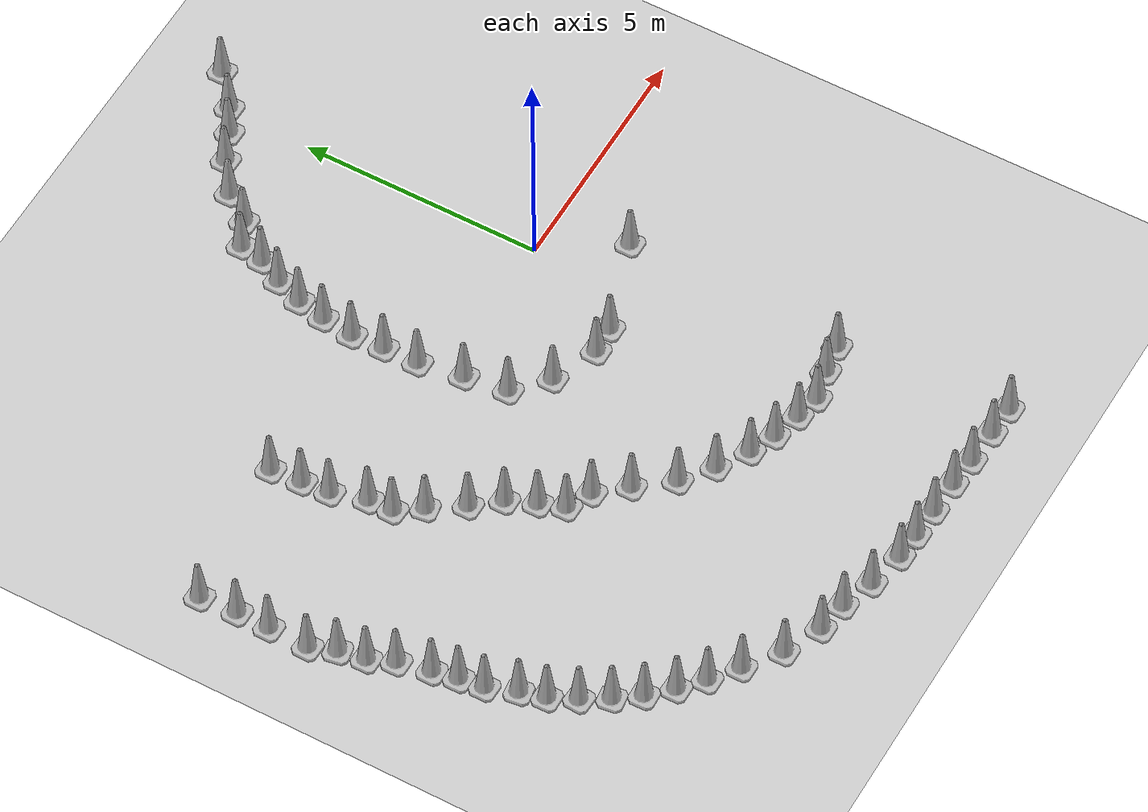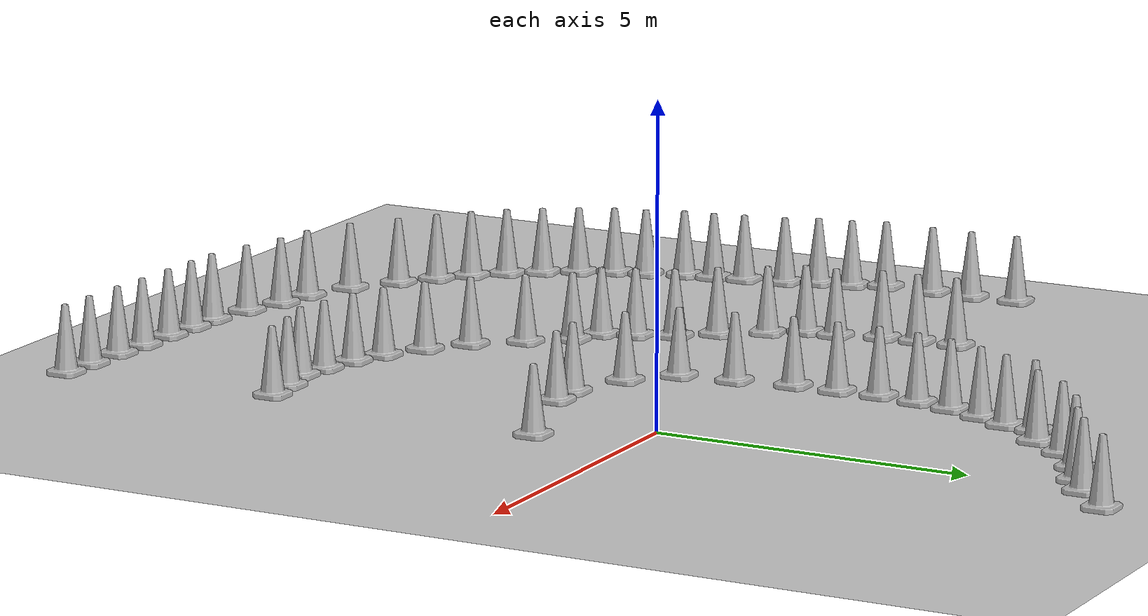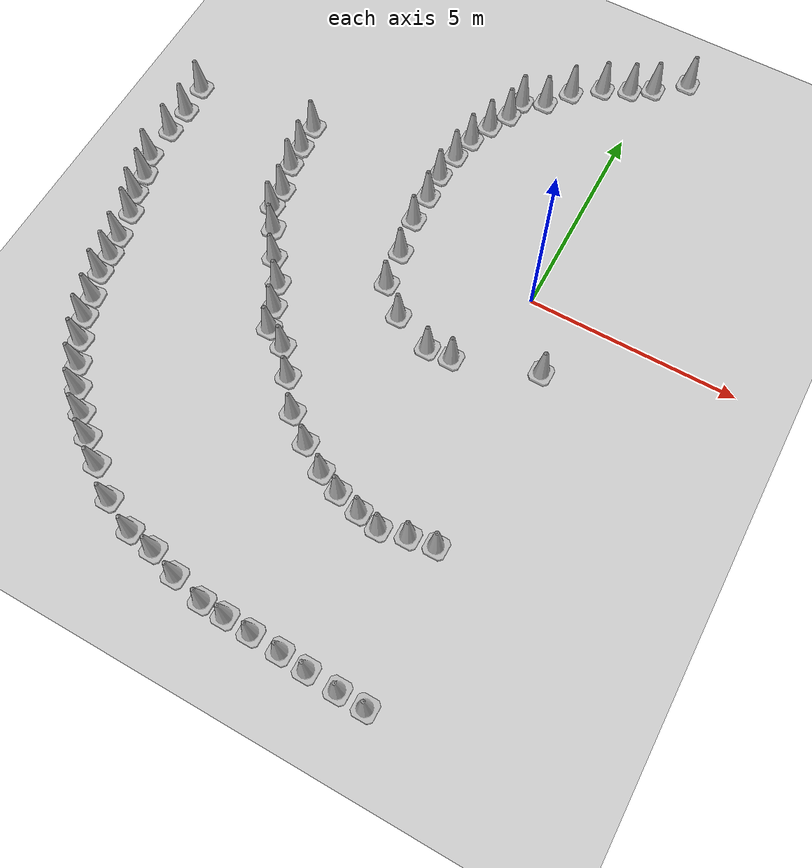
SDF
<sdf version="1.7">
 <world name="default">
  <model name="ground_plane">
   <static>1</static>
   <link name="link">
    <collision name="collision">
     <geometry><plane><normal>0 0 1</normal><size>100 100</size></plane></geometry>
     <surface>
      <contact><collide_bitmask>65535</collide_bitmask></contact>
      <friction><ode><mu>100</mu><mu2>50</mu2></ode></friction>
     </surface>
    </collision>
    <visual name="visual">
     <cast_shadows>0</cast_shadows>
     <geometry><plane><normal>0 0 1</normal><size>100 100</size></plane></geometry>
     <material>
      <script><uri>file://media/materials/scripts/gazebo.material</uri><name>Gazebo/Grey</name></script>
     </material>
    </visual>
   </link>
  </model>
  <model name="Construction Cone">
   <link name="link">
    <collision name="collision">
     <geometry>
      <mesh><scale>10 10 10</scale><uri>model://construction_cone/meshes/construction_cone.dae</uri></mesh>
     </geometry>
    </collision>
    <visual name="visual">
     <geometry>
      <mesh><scale>10 10 10</scale><uri>model://construction_cone/meshes/construction_cone.dae</uri></mesh>
     </geometry>
    </visual>
    <inertial>
     <inertia><ixx>1</ixx><ixy>0</ixy><ixz>0</ixz><iyy>1</iyy><iyz>0</iyz><izz>1</izz></inertia>
     <mass>1</mass>
    </inertial>
   </link>
   <pose>-3.44068 1.98693 -0 0 -0 0</pose>
  </model>
  <model name="Construction Cone_0">
   <link name="link">
    <collision name="collision">
     <geometry>
      <mesh><scale>10 10 10</scale><uri>model://construction_cone/meshes/construction_cone.dae</uri></mesh>
     </geometry>
    </collision>
    <visual name="visual">
     <geometry>
      <mesh><scale>10 10 10</scale><uri>model://construction_cone/meshes/construction_cone.dae</uri></mesh>
     </geometry>
    </visual>
    <inertial>
     <inertia><ixx>1</ixx><ixy>0</ixy><ixz>0</ixz><iyy>1</iyy><iyz>0</iyz><izz>1</izz></inertia>
     <mass>1</mass>
    </inertial>
   </link>
   <pose>-3.40166 1.31353 -0 0 -0 0</pose>
  </model>
  <model name="Construction Cone_1">
   <link name="link">
    <collision name="collision">
     <geometry>
      <mesh><scale>10 10 10</scale><uri>model://construction_cone/meshes/construction_cone.dae</uri></mesh>
     </geometry>
    </collision>
    <visual name="visual">
     <geometry>
      <mesh><scale>10 10 10</scale><uri>model://construction_cone/meshes/construction_cone.dae</uri></mesh>
     </geometry>
    </visual>
    <inertial>
     <inertia><ixx>1</ixx><ixy>0</ixy><ixz>0</ixz><iyy>1</iyy><iyz>0</iyz><izz>1</izz></inertia>
     <mass>1</mass>
    </inertial>
   </link>
   <pose>-3.38609 0.586652 -0 0 -1e-06 0</pose>
  </model>
  <model name="Construction Cone_2">
   <link name="link">
    <collision name="collision">
     <geometry>
      <mesh><scale>10 10 10</scale><uri>model://construction_cone/meshes/construction_cone.dae</uri></mesh>
     </geometry>
    </collision>
    <visual name="visual">
     <geometry>
      <mesh><scale>10 10 10</scale><uri>model://construction_cone/meshes/construction_cone.dae</uri></mesh>
     </geometry>
    </visual>
    <inertial>
     <inertia><ixx>1</ixx><ixy>0</ixy><ixz>0</ixz><iyy>1</iyy><iyz>0</iyz><izz>1</izz></inertia>
     <mass>1</mass>
    </inertial>
   </link>
   <pose>-3.23094 -0.328512 -0 0 -0 0</pose>
  </model>
  <model name="Construction Cone_3">
   <link name="link">
    <collision name="collision">
     <geometry>
      <mesh><scale>10 10 10</scale><uri>model://construction_cone/meshes/construction_cone.dae</uri></mesh>
     </geometry>
    </collision>
    <visual name="visual">
     <geometry>
      <mesh><scale>10 10 10</scale><uri>model://construction_cone/meshes/construction_cone.dae</uri></mesh>
     </geometry>
    </visual>
    <inertial>
     <inertia><ixx>1</ixx><ixy>0</ixy><ixz>0</ixz><iyy>1</iyy><iyz>0</iyz><izz>1</izz></inertia>
     <mass>1</mass>
    </inertial>
   </link>
   <pose>-3.10854 -1.21448 -0 0 -1e-06 0</pose>
  </model>
  <model name="Construction Cone_4">
   <link name="link">
    <collision name="collision">
     <geometry>
      <mesh><scale>10 10 10</scale><uri>model://construction_cone/meshes/construction_cone.dae</uri></mesh>
     </geometry>
    </collision>
    <visual name="visual">
     <geometry>
      <mesh><scale>10 10 10</scale><uri>model://construction_cone/meshes/construction_cone.dae</uri></mesh>
     </geometry>
    </visual>
    <inertial>
     <inertia><ixx>1</ixx><ixy>0</ixy><ixz>0</ixz><iyy>1</iyy><iyz>0</iyz><izz>1</izz></inertia>
     <mass>1</mass>
    </inertial>
   </link>
   <pose>-2.46633 -1.80717 -0 0 -1e-06 0</pose>
  </model>
  <model name="Construction Cone_5">
   <link name="link">
    <collision name="collision">
     <geometry>
      <mesh><scale>10 10 10</scale><uri>model://construction_cone/meshes/construction_cone.dae</uri></mesh>
     </geometry>
    </collision>
    <visual name="visual">
     <geometry>
      <mesh><scale>10 10 10</scale><uri>model://construction_cone/meshes/construction_cone.dae</uri></mesh>
     </geometry>
    </visual>
    <inertial>
     <inertia><ixx>1</ixx><ixy>0</ixy><ixz>0</ixz><iyy>1</iyy><iyz>0</iyz><izz>1</izz></inertia>
     <mass>1</mass>
    </inertial>
   </link>
   <pose>-1.51013 -2.19989 -0 0 -0 0</pose>
  </model>
  <model name="Construction Cone_6">
   <link name="link">
    <collision name="collision">
     <geometry>
      <mesh><scale>10 10 10</scale><uri>model://construction_cone/meshes/construction_cone.dae</uri></mesh>
     </geometry>
    </collision>
    <visual name="visual">
     <geometry>
      <mesh><scale>10 10 10</scale><uri>model://construction_cone/meshes/construction_cone.dae</uri></mesh>
     </geometry>
    </visual>
    <inertial>
     <inertia><ixx>1</ixx><ixy>0</ixy><ixz>0</ixz><iyy>1</iyy><iyz>0</iyz><izz>1</izz></inertia>
     <mass>1</mass>
    </inertial>
   </link>
   <pose>-0.921866 -2.16276 -0 0 -0 0</pose>
  </model>
  <model name="Construction Cone_7">
   <link name="link">
    <collision name="collision">
     <geometry>
      <mesh><scale>10 10 10</scale><uri>model://construction_cone/meshes/construction_cone.dae</uri></mesh>
     </geometry>
    </collision>
    <visual name="visual">
     <geometry>
      <mesh><scale>10 10 10</scale><uri>model://construction_cone/meshes/construction_cone.dae</uri></mesh>
     </geometry>
    </visual>
    <inertial>
     <inertia><ixx>1</ixx><ixy>0</ixy><ixz>0</ixz><iyy>1</iyy><iyz>0</iyz><izz>1</izz></inertia>
     <mass>1</mass>
    </inertial>
   </link>
   <pose>0.9944 -1.52269 -0 0 -1e-06 0</pose>
  </model>
  <model name="Construction Cone_22">
   <link name="link">
    <collision name="collision">
     <geometry>
      <mesh><scale>10 10 10</scale><uri>model://construction_cone/meshes/construction_cone.dae</uri></mesh>
     </geometry>
    </collision>
    <visual name="visual">
     <geometry>
      <mesh><scale>10 10 10</scale><uri>model://construction_cone/meshes/construction_cone.dae</uri></mesh>
     </geometry>
    </visual>
    <inertial>
     <inertia><ixx>1</ixx><ixy>0</ixy><ixz>0</ixz><iyy>1</iyy><iyz>0</iyz><izz>1</izz></inertia>
     <mass>1</mass>
    </inertial>
   </link>
   <pose>0.05073 6.79197 -0 0 -0 0.001801</pose>
  </model>
  <model name="Construction Cone_24">
   <link name="link">
    <collision name="collision">
     <geometry>
      <mesh><scale>10 10 10</scale><uri>model://construction_cone/meshes/construction_cone.dae</uri></mesh>
     </geometry>
    </collision>
    <visual name="visual">
     <geometry>
      <mesh><scale>10 10 10</scale><uri>model://construction_cone/meshes/construction_cone.dae</uri></mesh>
     </geometry>
    </visual>
    <inertial>
     <inertia><ixx>1</ixx><ixy>0</ixy><ixz>0</ixz><iyy>1</iyy><iyz>0</iyz><izz>1</izz></inertia>
     <mass>1</mass>
    </inertial>
   </link>
   <pose>0.746636 7.3753 -0 0 -0 0</pose>
  </model>
  <model name="Construction Cone_49">
   <link name="link">
    <collision name="collision">
     <geometry>
      <mesh><scale>10 10 10</scale><uri>model://construction_cone/meshes/construction_cone.dae</uri></mesh>
     </geometry>
    </collision>
    <visual name="visual">
     <geometry>
      <mesh><scale>10 10 10</scale><uri>model://construction_cone/meshes/construction_cone.dae</uri></mesh>
     </geometry>
    </visual>
    <inertial>
     <inertia><ixx>1</ixx><ixy>0</ixy><ixz>0</ixz><iyy>1</iyy><iyz>0</iyz><izz>1</izz></inertia>
     <mass>1</mass>
    </inertial>
   </link>
   <pose>-0.452202 6.48631 -0 0 0 -0.000383</pose>
  </model>
  <model name="Construction Cone_50">
   <link name="link">
    <collision name="collision">
     <geometry>
      <mesh><scale>10 10 10</scale><uri>model://construction_cone/meshes/construction_cone.dae</uri></mesh>
     </geometry>
    </collision>
    <visual name="visual">
     <geometry>
      <mesh><scale>10 10 10</scale><uri>model://construction_cone/meshes/construction_cone.dae</uri></mesh>
     </geometry>
    </visual>
    <inertial>
     <inertia><ixx>1</ixx><ixy>0</ixy><ixz>0</ixz><iyy>1</iyy><iyz>0</iyz><izz>1</izz></inertia>
     <mass>1</mass>
    </inertial>
   </link>
   <pose>-1.0673 6.19671 -0 0 -1e-06 0</pose>
  </model>
  <model name="Construction Cone_51">
   <link name="link">
    <collision name="collision">
     <geometry>
      <mesh><scale>10 10 10</scale><uri>model://construction_cone/meshes/construction_cone.dae</uri></mesh>
     </geometry>
    </collision>
    <visual name="visual">
     <geometry>
      <mesh><scale>10 10 10</scale><uri>model://construction_cone/meshes/construction_cone.dae</uri></mesh>
     </geometry>
    </visual>
    <inertial>
     <inertia><ixx>1</ixx><ixy>0</ixy><ixz>0</ixz><iyy>1</iyy><iyz>0</iyz><izz>1</izz></inertia>
     <mass>1</mass>
    </inertial>
   </link>
   <pose>-1.71318 5.71714 0 -0 -0 -0</pose>
  </model>
  <model name="Construction Cone_52">
   <link name="link">
    <collision name="collision">
     <geometry>
      <mesh><scale>10 10 10</scale><uri>model://construction_cone/meshes/construction_cone.dae</uri></mesh>
     </geometry>
    </collision>
    <visual name="visual">
     <geometry>
      <mesh><scale>10 10 10</scale><uri>model://construction_cone/meshes/construction_cone.dae</uri></mesh>
     </geometry>
    </visual>
    <inertial>
     <inertia><ixx>1</ixx><ixy>0</ixy><ixz>0</ixz><iyy>1</iyy><iyz>0</iyz><izz>1</izz></inertia>
     <mass>1</mass>
    </inertial>
   </link>
   <pose>-2.14539 5.13354 -0 0 -1e-06 0</pose>
  </model>
  <model name="Construction Cone_53">
   <link name="link">
    <collision name="collision">
     <geometry>
      <mesh><scale>10 10 10</scale><uri>model://construction_cone/meshes/construction_cone.dae</uri></mesh>
     </geometry>
    </collision>
    <visual name="visual">
     <geometry>
      <mesh><scale>10 10 10</scale><uri>model://construction_cone/meshes/construction_cone.dae</uri></mesh>
     </geometry>
    </visual>
    <inertial>
     <inertia><ixx>1</ixx><ixy>0</ixy><ixz>0</ixz><iyy>1</iyy><iyz>0</iyz><izz>1</izz></inertia>
     <mass>1</mass>
    </inertial>
   </link>
   <pose>-3.36483 2.65519 -0 0 -0 0</pose>
  </model>
  <model name="Construction Cone_54">
   <link name="link">
    <collision name="collision">
     <geometry>
      <mesh><scale>10 10 10</scale><uri>model://construction_cone/meshes/construction_cone.dae</uri></mesh>
     </geometry>
    </collision>
    <visual name="visual">
     <geometry>
      <mesh><scale>10 10 10</scale><uri>model://construction_cone/meshes/construction_cone.dae</uri></mesh>
     </geometry>
    </visual>
    <inertial>
     <inertia><ixx>1</ixx><ixy>0</ixy><ixz>0</ixz><iyy>1</iyy><iyz>0</iyz><izz>1</izz></inertia>
     <mass>1</mass>
    </inertial>
   </link>
   <pose>-3.2459 3.25522 -0 0 -0 0</pose>
  </model>
  <model name="Construction Cone_55">
   <link name="link">
    <collision name="collision">
     <geometry>
      <mesh><scale>10 10 10</scale><uri>model://construction_cone/meshes/construction_cone.dae</uri></mesh>
     </geometry>
    </collision>
    <visual name="visual">
     <geometry>
      <mesh><scale>10 10 10</scale><uri>model://construction_cone/meshes/construction_cone.dae</uri></mesh>
     </geometry>
    </visual>
    <inertial>
     <inertia><ixx>1</ixx><ixy>0</ixy><ixz>0</ixz><iyy>1</iyy><iyz>0</iyz><izz>1</izz></inertia>
     <mass>1</mass>
    </inertial>
   </link>
   <pose>-3.03473 3.83269 -0 0 -0 0</pose>
  </model>
  <model name="Construction Cone_56">
   <link name="link">
    <collision name="collision">
     <geometry>
      <mesh><scale>10 10 10</scale><uri>model://construction_cone/meshes/construction_cone.dae</uri></mesh>
     </geometry>
    </collision>
    <visual name="visual">
     <geometry>
      <mesh><scale>10 10 10</scale><uri>model://construction_cone/meshes/construction_cone.dae</uri></mesh>
     </geometry>
    </visual>
    <inertial>
     <inertia><ixx>1</ixx><ixy>0</ixy><ixz>0</ixz><iyy>1</iyy><iyz>0</iyz><izz>1</izz></inertia>
     <mass>1</mass>
    </inertial>
   </link>
   <pose>-2.76935 4.35747 -0 0 -1e-06 0</pose>
  </model>
  <model name="Construction Cone_57">
   <link name="link">
    <collision name="collision">
     <geometry>
      <mesh><scale>10 10 10</scale><uri>model://construction_cone/meshes/construction_cone.dae</uri></mesh>
     </geometry>
    </collision>
    <visual name="visual">
     <geometry>
      <mesh><scale>10 10 10</scale><uri>model://construction_cone/meshes/construction_cone.dae</uri></mesh>
     </geometry>
    </visual>
    <inertial>
     <inertia><ixx>1</ixx><ixy>0</ixy><ixz>0</ixz><iyy>1</iyy><iyz>0</iyz><izz>1</izz></inertia>
     <mass>1</mass>
    </inertial>
   </link>
   <pose>-2.66975 4.8703 -0 0 -0 0</pose>
  </model>
  <model name="Construction Cone_72">
   <link name="link">
    <collision name="collision">
     <geometry>
      <mesh><scale>10 10 10</scale><uri>model://construction_cone/meshes/construction_cone.dae</uri></mesh>
     </geometry>
    </collision>
    <visual name="visual">
     <geometry>
      <mesh><scale>10 10 10</scale><uri>model://construction_cone/meshes/construction_cone.dae</uri></mesh>
     </geometry>
    </visual>
    <inertial>
     <inertia><ixx>1</ixx><ixy>0</ixy><ixz>0</ixz><iyy>1</iyy><iyz>0</iyz><izz>1</izz></inertia>
     <mass>1</mass>
    </inertial>
   </link>
   <pose>0.808801 -6.08087 -0 0 -0 0</pose>
  </model>
  <model name="Construction Cone_73">
   <link name="link">
    <collision name="collision">
     <geometry>
      <mesh><scale>10 10 10</scale><uri>model://construction_cone/meshes/construction_cone.dae</uri></mesh>
     </geometry>
    </collision>
    <visual name="visual">
     <geometry>
      <mesh><scale>10 10 10</scale><uri>model://construction_cone/meshes/construction_cone.dae</uri></mesh>
     </geometry>
    </visual>
    <inertial>
     <inertia><ixx>1</ixx><ixy>0</ixy><ixz>0</ixz><iyy>1</iyy><iyz>0</iyz><izz>1</izz></inertia>
     <mass>1</mass>
    </inertial>
   </link>
   <pose>0.199925 -6.17288 -0 0 -1e-06 0</pose>
  </model>
  <model name="Construction Cone_74">
   <link name="link">
    <collision name="collision">
     <geometry>
      <mesh><scale>10 10 10</scale><uri>model://construction_cone/meshes/construction_cone.dae</uri></mesh>
     </geometry>
    </collision>
    <visual name="visual">
     <geometry>
      <mesh><scale>10 10 10</scale><uri>model://construction_cone/meshes/construction_cone.dae</uri></mesh>
     </geometry>
    </visual>
    <inertial>
     <inertia><ixx>1</ixx><ixy>0</ixy><ixz>0</ixz><iyy>1</iyy><iyz>0</iyz><izz>1</izz></inertia>
     <mass>1</mass>
    </inertial>
   </link>
   <pose>-6.82958 1.72942 -2e-06 4e-06 -0 0</pose>
  </model>
  <model name="Construction Cone_75">
   <link name="link">
    <collision name="collision">
     <geometry>
      <mesh><scale>10 10 10</scale><uri>model://construction_cone/meshes/construction_cone.dae</uri></mesh>
     </geometry>
    </collision>
    <visual name="visual">
     <geometry>
      <mesh><scale>10 10 10</scale><uri>model://construction_cone/meshes/construction_cone.dae</uri></mesh>
     </geometry>
    </visual>
    <inertial>
     <inertia><ixx>1</ixx><ixy>0</ixy><ixz>0</ixz><iyy>1</iyy><iyz>0</iyz><izz>1</izz></inertia>
     <mass>1</mass>
    </inertial>
   </link>
   <pose>-6.78625 1.08528 -0 0 -1e-06 0</pose>
  </model>
  <model name="Construction Cone_76">
   <link name="link">
    <collision name="collision">
     <geometry>
      <mesh><scale>10 10 10</scale><uri>model://construction_cone/meshes/construction_cone.dae</uri></mesh>
     </geometry>
    </collision>
    <visual name="visual">
     <geometry>
      <mesh><scale>10 10 10</scale><uri>model://construction_cone/meshes/construction_cone.dae</uri></mesh>
     </geometry>
    </visual>
    <inertial>
     <inertia><ixx>1</ixx><ixy>0</ixy><ixz>0</ixz><iyy>1</iyy><iyz>0</iyz><izz>1</izz></inertia>
     <mass>1</mass>
    </inertial>
   </link>
   <pose>-6.73831 0.507794 -0 0 -0 0</pose>
  </model>
  <model name="Construction Cone_77">
   <link name="link">
    <collision name="collision">
     <geometry>
      <mesh><scale>10 10 10</scale><uri>model://construction_cone/meshes/construction_cone.dae</uri></mesh>
     </geometry>
    </collision>
    <visual name="visual">
     <geometry>
      <mesh><scale>10 10 10</scale><uri>model://construction_cone/meshes/construction_cone.dae</uri></mesh>
     </geometry>
    </visual>
    <inertial>
     <inertia><ixx>1</ixx><ixy>0</ixy><ixz>0</ixz><iyy>1</iyy><iyz>0</iyz><izz>1</izz></inertia>
     <mass>1</mass>
    </inertial>
   </link>
   <pose>-6.53269 -0.198822 -0 0 -1e-06 -0.00909</pose>
  </model>
  <model name="Construction Cone_78">
   <link name="link">
    <collision name="collision">
     <geometry>
      <mesh><scale>10 10 10</scale><uri>model://construction_cone/meshes/construction_cone.dae</uri></mesh>
     </geometry>
    </collision>
    <visual name="visual">
     <geometry>
      <mesh><scale>10 10 10</scale><uri>model://construction_cone/meshes/construction_cone.dae</uri></mesh>
     </geometry>
    </visual>
    <inertial>
     <inertia><ixx>1</ixx><ixy>0</ixy><ixz>0</ixz><iyy>1</iyy><iyz>0</iyz><izz>1</izz></inertia>
     <mass>1</mass>
    </inertial>
   </link>
   <pose>-6.5119 -0.710206 -0 0 0 -0.037666</pose>
  </model>
  <model name="Construction Cone_79">
   <link name="link">
    <collision name="collision">
     <geometry>
      <mesh><scale>10 10 10</scale><uri>model://construction_cone/meshes/construction_cone.dae</uri></mesh>
     </geometry>
    </collision>
    <visual name="visual">
     <geometry>
      <mesh><scale>10 10 10</scale><uri>model://construction_cone/meshes/construction_cone.dae</uri></mesh>
     </geometry>
    </visual>
    <inertial>
     <inertia><ixx>1</ixx><ixy>0</ixy><ixz>0</ixz><iyy>1</iyy><iyz>0</iyz><izz>1</izz></inertia>
     <mass>1</mass>
    </inertial>
   </link>
   <pose>-6.17511 -1.21269 -0 0 -0 0.149158</pose>
  </model>
  <model name="Construction Cone_80">
   <link name="link">
    <collision name="collision">
     <geometry>
      <mesh><scale>10 10 10</scale><uri>model://construction_cone/meshes/construction_cone.dae</uri></mesh>
     </geometry>
    </collision>
    <visual name="visual">
     <geometry>
      <mesh><scale>10 10 10</scale><uri>model://construction_cone/meshes/construction_cone.dae</uri></mesh>
     </geometry>
    </visual>
    <inertial>
     <inertia><ixx>1</ixx><ixy>0</ixy><ixz>0</ixz><iyy>1</iyy><iyz>0</iyz><izz>1</izz></inertia>
     <mass>1</mass>
    </inertial>
   </link>
   <pose>-5.73675 -1.8714 -0 0 -0 0</pose>
  </model>
  <model name="Construction Cone_81">
   <link name="link">
    <collision name="collision">
     <geometry>
      <mesh><scale>10 10 10</scale><uri>model://construction_cone/meshes/construction_cone.dae</uri></mesh>
     </geometry>
    </collision>
    <visual name="visual">
     <geometry>
      <mesh><scale>10 10 10</scale><uri>model://construction_cone/meshes/construction_cone.dae</uri></mesh>
     </geometry>
    </visual>
    <inertial>
     <inertia><ixx>1</ixx><ixy>0</ixy><ixz>0</ixz><iyy>1</iyy><iyz>0</iyz><izz>1</izz></inertia>
     <mass>1</mass>
    </inertial>
   </link>
   <pose>-5.30917 -2.40217 -0 0 -0 0</pose>
  </model>
  <model name="Construction Cone_82">
   <link name="link">
    <collision name="collision">
     <geometry>
      <mesh><scale>10 10 10</scale><uri>model://construction_cone/meshes/construction_cone.dae</uri></mesh>
     </geometry>
    </collision>
    <visual name="visual">
     <geometry>
      <mesh><scale>10 10 10</scale><uri>model://construction_cone/meshes/construction_cone.dae</uri></mesh>
     </geometry>
    </visual>
    <inertial>
     <inertia><ixx>1</ixx><ixy>0</ixy><ixz>0</ixz><iyy>1</iyy><iyz>0</iyz><izz>1</izz></inertia>
     <mass>1</mass>
    </inertial>
   </link>
   <pose>-5.06341 -2.96888 -1e-05 0 -0 0.00067</pose>
  </model>
  <model name="Construction Cone_83">
   <link name="link">
    <collision name="collision">
     <geometry>
      <mesh><scale>10 10 10</scale><uri>model://construction_cone/meshes/construction_cone.dae</uri></mesh>
     </geometry>
    </collision>
    <visual name="visual">
     <geometry>
      <mesh><scale>10 10 10</scale><uri>model://construction_cone/meshes/construction_cone.dae</uri></mesh>
     </geometry>
    </visual>
    <inertial>
     <inertia><ixx>1</ixx><ixy>0</ixy><ixz>0</ixz><iyy>1</iyy><iyz>0</iyz><izz>1</izz></inertia>
     <mass>1</mass>
    </inertial>
   </link>
   <pose>-4.87705 -3.47317 -0 0 -0 0.009522</pose>
  </model>
  <model name="Construction Cone_84">
   <link name="link">
    <collision name="collision">
     <geometry>
      <mesh><scale>10 10 10</scale><uri>model://construction_cone/meshes/construction_cone.dae</uri></mesh>
     </geometry>
    </collision>
    <visual name="visual">
     <geometry>
      <mesh><scale>10 10 10</scale><uri>model://construction_cone/meshes/construction_cone.dae</uri></mesh>
     </geometry>
    </visual>
    <inertial>
     <inertia><ixx>1</ixx><ixy>0</ixy><ixz>0</ixz><iyy>1</iyy><iyz>0</iyz><izz>1</izz></inertia>
     <mass>1</mass>
    </inertial>
   </link>
   <pose>-4.36654 -3.71635 -0 0 -1e-06 -0.021103</pose>
  </model>
  <model name="Construction Cone_85">
   <link name="link">
    <collision name="collision">
     <geometry>
      <mesh><scale>10 10 10</scale><uri>model://construction_cone/meshes/construction_cone.dae</uri></mesh>
     </geometry>
    </collision>
    <visual name="visual">
     <geometry>
      <mesh><scale>10 10 10</scale><uri>model://construction_cone/meshes/construction_cone.dae</uri></mesh>
     </geometry>
    </visual>
    <inertial>
     <inertia><ixx>1</ixx><ixy>0</ixy><ixz>0</ixz><iyy>1</iyy><iyz>0</iyz><izz>1</izz></inertia>
     <mass>1</mass>
    </inertial>
   </link>
   <pose>-3.8838 -4.29101 -0 0 -0 0</pose>
  </model>
  <model name="Construction Cone_86">
   <link name="link">
    <collision name="collision">
     <geometry>
      <mesh><scale>10 10 10</scale><uri>model://construction_cone/meshes/construction_cone.dae</uri></mesh>
     </geometry>
    </collision>
    <visual name="visual">
     <geometry>
      <mesh><scale>10 10 10</scale><uri>model://construction_cone/meshes/construction_cone.dae</uri></mesh>
     </geometry>
    </visual>
    <inertial>
     <inertia><ixx>1</ixx><ixy>0</ixy><ixz>0</ixz><iyy>1</iyy><iyz>0</iyz><izz>1</izz></inertia>
     <mass>1</mass>
    </inertial>
   </link>
   <pose>-3.34383 -4.97273 -0 0 -0 0</pose>
  </model>
  <model name="Construction Cone_87">
   <link name="link">
    <collision name="collision">
     <geometry>
      <mesh><scale>10 10 10</scale><uri>model://construction_cone/meshes/construction_cone.dae</uri></mesh>
     </geometry>
    </collision>
    <visual name="visual">
     <geometry>
      <mesh><scale>10 10 10</scale><uri>model://construction_cone/meshes/construction_cone.dae</uri></mesh>
     </geometry>
    </visual>
    <inertial>
     <inertia><ixx>1</ixx><ixy>0</ixy><ixz>0</ixz><iyy>1</iyy><iyz>0</iyz><izz>1</izz></inertia>
     <mass>1</mass>
    </inertial>
   </link>
   <pose>-2.73046 -5.43974 -0 0 -1e-06 0</pose>
  </model>
  <model name="Construction Cone_88">
   <link name="link">
    <collision name="collision">
     <geometry>
      <mesh><scale>10 10 10</scale><uri>model://construction_cone/meshes/construction_cone.dae</uri></mesh>
     </geometry>
    </collision>
    <visual name="visual">
     <geometry>
      <mesh><scale>10 10 10</scale><uri>model://construction_cone/meshes/construction_cone.dae</uri></mesh>
     </geometry>
    </visual>
    <inertial>
     <inertia><ixx>1</ixx><ixy>0</ixy><ixz>0</ixz><iyy>1</iyy><iyz>0</iyz><izz>1</izz></inertia>
     <mass>1</mass>
    </inertial>
   </link>
   <pose>-2.10623 -5.82337 -0 0 -1e-06 0</pose>
  </model>
  <model name="Construction Cone_89">
   <link name="link">
    <collision name="collision">
     <geometry>
      <mesh><scale>10 10 10</scale><uri>model://construction_cone/meshes/construction_cone.dae</uri></mesh>
     </geometry>
    </collision>
    <visual name="visual">
     <geometry>
      <mesh><scale>10 10 10</scale><uri>model://construction_cone/meshes/construction_cone.dae</uri></mesh>
     </geometry>
    </visual>
    <inertial>
     <inertia><ixx>1</ixx><ixy>0</ixy><ixz>0</ixz><iyy>1</iyy><iyz>0</iyz><izz>1</izz></inertia>
     <mass>1</mass>
    </inertial>
   </link>
   <pose>-1.56106 -6.04882 0 -0 -0 -0</pose>
  </model>
  <model name="Construction Cone_90">
   <link name="link">
    <collision name="collision">
     <geometry>
      <mesh><scale>10 10 10</scale><uri>model://construction_cone/meshes/construction_cone.dae</uri></mesh>
     </geometry>
    </collision>
    <visual name="visual">
     <geometry>
      <mesh><scale>10 10 10</scale><uri>model://construction_cone/meshes/construction_cone.dae</uri></mesh>
     </geometry>
    </visual>
    <inertial>
     <inertia><ixx>1</ixx><ixy>0</ixy><ixz>0</ixz><iyy>1</iyy><iyz>0</iyz><izz>1</izz></inertia>
     <mass>1</mass>
    </inertial>
   </link>
   <pose>-0.960067 -6.21193 -0 0 -0 0</pose>
  </model>
  <model name="Construction Cone_91">
   <link name="link">
    <collision name="collision">
     <geometry>
      <mesh><scale>10 10 10</scale><uri>model://construction_cone/meshes/construction_cone.dae</uri></mesh>
     </geometry>
    </collision>
    <visual name="visual">
     <geometry>
      <mesh><scale>10 10 10</scale><uri>model://construction_cone/meshes/construction_cone.dae</uri></mesh>
     </geometry>
    </visual>
    <inertial>
     <inertia><ixx>1</ixx><ixy>0</ixy><ixz>0</ixz><iyy>1</iyy><iyz>0</iyz><izz>1</izz></inertia>
     <mass>1</mass>
    </inertial>
   </link>
   <pose>-0.429233 -6.32148 -0 0 -0 0</pose>
  </model>
  <model name="Construction Cone_92">
   <link name="link">
    <collision name="collision">
     <geometry>
      <mesh><scale>10 10 10</scale><uri>model://construction_cone/meshes/construction_cone.dae</uri></mesh>
     </geometry>
    </collision>
    <visual name="visual">
     <geometry>
      <mesh><scale>10 10 10</scale><uri>model://construction_cone/meshes/construction_cone.dae</uri></mesh>
     </geometry>
    </visual>
    <inertial>
     <inertia><ixx>1</ixx><ixy>0</ixy><ixz>0</ixz><iyy>1</iyy><iyz>0</iyz><izz>1</izz></inertia>
     <mass>1</mass>
    </inertial>
   </link>
   <pose>-9.913 1.3916 -0 0 -0 0</pose>
  </model>
  <model name="Construction Cone_93">
   <link name="link">
    <collision name="collision">
     <geometry>
      <mesh><scale>10 10 10</scale><uri>model://construction_cone/meshes/construction_cone.dae</uri></mesh>
     </geometry>
    </collision>
    <visual name="visual">
     <geometry>
      <mesh><scale>10 10 10</scale><uri>model://construction_cone/meshes/construction_cone.dae</uri></mesh>
     </geometry>
    </visual>
    <inertial>
     <inertia><ixx>1</ixx><ixy>0</ixy><ixz>0</ixz><iyy>1</iyy><iyz>0</iyz><izz>1</izz></inertia>
     <mass>1</mass>
    </inertial>
   </link>
   <pose>-9.8614 0.623311 -0 0 -0 0</pose>
  </model>
  <model name="Construction Cone_94">
   <link name="link">
    <collision name="collision">
     <geometry>
      <mesh><scale>10 10 10</scale><uri>model://construction_cone/meshes/construction_cone.dae</uri></mesh>
     </geometry>
    </collision>
    <visual name="visual">
     <geometry>
      <mesh><scale>10 10 10</scale><uri>model://construction_cone/meshes/construction_cone.dae</uri></mesh>
     </geometry>
    </visual>
    <inertial>
     <inertia><ixx>1</ixx><ixy>0</ixy><ixz>0</ixz><iyy>1</iyy><iyz>0</iyz><izz>1</izz></inertia>
     <mass>1</mass>
    </inertial>
   </link>
   <pose>-9.868 -0.061262 -0 0 -0 0</pose>
  </model>
  <model name="Construction Cone_95">
   <link name="link">
    <collision name="collision">
     <geometry>
      <mesh><scale>10 10 10</scale><uri>model://construction_cone/meshes/construction_cone.dae</uri></mesh>
     </geometry>
    </collision>
    <visual name="visual">
     <geometry>
      <mesh><scale>10 10 10</scale><uri>model://construction_cone/meshes/construction_cone.dae</uri></mesh>
     </geometry>
    </visual>
    <inertial>
     <inertia><ixx>1</ixx><ixy>0</ixy><ixz>0</ixz><iyy>1</iyy><iyz>0</iyz><izz>1</izz></inertia>
     <mass>1</mass>
    </inertial>
   </link>
   <pose>-9.88209 -0.890995 -0 0 0 -0.024979</pose>
  </model>
  <model name="Construction Cone_96">
   <link name="link">
    <collision name="collision">
     <geometry>
      <mesh><scale>10 10 10</scale><uri>model://construction_cone/meshes/construction_cone.dae</uri></mesh>
     </geometry>
    </collision>
    <visual name="visual">
     <geometry>
      <mesh><scale>10 10 10</scale><uri>model://construction_cone/meshes/construction_cone.dae</uri></mesh>
     </geometry>
    </visual>
    <inertial>
     <inertia><ixx>1</ixx><ixy>0</ixy><ixz>0</ixz><iyy>1</iyy><iyz>0</iyz><izz>1</izz></inertia>
     <mass>1</mass>
    </inertial>
   </link>
   <pose>-9.68757 -1.4114 -0 -0 -1e-06 0.17316</pose>
  </model>
  <model name="Construction Cone_97">
   <link name="link">
    <collision name="collision">
     <geometry>
      <mesh><scale>10 10 10</scale><uri>model://construction_cone/meshes/construction_cone.dae</uri></mesh>
     </geometry>
    </collision>
    <visual name="visual">
     <geometry>
      <mesh><scale>10 10 10</scale><uri>model://construction_cone/meshes/construction_cone.dae</uri></mesh>
     </geometry>
    </visual>
    <inertial>
     <inertia><ixx>1</ixx><ixy>0</ixy><ixz>0</ixz><iyy>1</iyy><iyz>0</iyz><izz>1</izz></inertia>
     <mass>1</mass>
    </inertial>
   </link>
   <pose>-9.58655 -1.96252 -0 0 0 -0.002482</pose>
  </model>
  <model name="Construction Cone_98">
   <link name="link">
    <collision name="collision">
     <geometry>
      <mesh><scale>10 10 10</scale><uri>model://construction_cone/meshes/construction_cone.dae</uri></mesh>
     </geometry>
    </collision>
    <visual name="visual">
     <geometry>
      <mesh><scale>10 10 10</scale><uri>model://construction_cone/meshes/construction_cone.dae</uri></mesh>
     </geometry>
    </visual>
    <inertial>
     <inertia><ixx>1</ixx><ixy>0</ixy><ixz>0</ixz><iyy>1</iyy><iyz>0</iyz><izz>1</izz></inertia>
     <mass>1</mass>
    </inertial>
   </link>
   <pose>-9.36756 -2.46584 -0 0 -0 0.001921</pose>
  </model>
  <model name="Construction Cone_99">
   <link name="link">
    <collision name="collision">
     <geometry>
      <mesh><scale>10 10 10</scale><uri>model://construction_cone/meshes/construction_cone.dae</uri></mesh>
     </geometry>
    </collision>
    <visual name="visual">
     <geometry>
      <mesh><scale>10 10 10</scale><uri>model://construction_cone/meshes/construction_cone.dae</uri></mesh>
     </geometry>
    </visual>
    <inertial>
     <inertia><ixx>1</ixx><ixy>0</ixy><ixz>0</ixz><iyy>1</iyy><iyz>0</iyz><izz>1</izz></inertia>
     <mass>1</mass>
    </inertial>
   </link>
   <pose>-9.22623 -3.12913 -0 0 0 -0.001086</pose>
  </model>
  <model name="Construction Cone_100">
   <link name="link">
    <collision name="collision">
     <geometry>
      <mesh><scale>10 10 10</scale><uri>model://construction_cone/meshes/construction_cone.dae</uri></mesh>
     </geometry>
    </collision>
    <visual name="visual">
     <geometry>
      <mesh><scale>10 10 10</scale><uri>model://construction_cone/meshes/construction_cone.dae</uri></mesh>
     </geometry>
    </visual>
    <inertial>
     <inertia><ixx>1</ixx><ixy>0</ixy><ixz>0</ixz><iyy>1</iyy><iyz>0</iyz><izz>1</izz></inertia>
     <mass>1</mass>
    </inertial>
   </link>
   <pose>-9.12351 -3.63343 -0 -0 -1e-06 0.010548</pose>
  </model>
  <model name="Construction Cone_101">
   <link name="link">
    <collision name="collision">
     <geometry>
      <mesh><scale>10 10 10</scale><uri>model://construction_cone/meshes/construction_cone.dae</uri></mesh>
     </geometry>
    </collision>
    <visual name="visual">
     <geometry>
      <mesh><scale>10 10 10</scale><uri>model://construction_cone/meshes/construction_cone.dae</uri></mesh>
     </geometry>
    </visual>
    <inertial>
     <inertia><ixx>1</ixx><ixy>0</ixy><ixz>0</ixz><iyy>1</iyy><iyz>0</iyz><izz>1</izz></inertia>
     <mass>1</mass>
    </inertial>
   </link>
   <pose>-9.05702 -4.13819 0 -0 -0 -0.001521</pose>
  </model>
  <model name="Construction Cone_102">
   <link name="link">
    <collision name="collision">
     <geometry>
      <mesh><scale>10 10 10</scale><uri>model://construction_cone/meshes/construction_cone.dae</uri></mesh>
     </geometry>
    </collision>
    <visual name="visual">
     <geometry>
      <mesh><scale>10 10 10</scale><uri>model://construction_cone/meshes/construction_cone.dae</uri></mesh>
     </geometry>
    </visual>
    <inertial>
     <inertia><ixx>1</ixx><ixy>0</ixy><ixz>0</ixz><iyy>1</iyy><iyz>0</iyz><izz>1</izz></inertia>
     <mass>1</mass>
    </inertial>
   </link>
   <pose>-8.83439 -4.72794 -0 0 -0 0.127507</pose>
  </model>
  <model name="Construction Cone_103">
   <link name="link">
    <collision name="collision">
     <geometry>
      <mesh><scale>10 10 10</scale><uri>model://construction_cone/meshes/construction_cone.dae</uri></mesh>
     </geometry>
    </collision>
    <visual name="visual">
     <geometry>
      <mesh><scale>10 10 10</scale><uri>model://construction_cone/meshes/construction_cone.dae</uri></mesh>
     </geometry>
    </visual>
    <inertial>
     <inertia><ixx>1</ixx><ixy>0</ixy><ixz>0</ixz><iyy>1</iyy><iyz>0</iyz><izz>1</izz></inertia>
     <mass>1</mass>
    </inertial>
   </link>
   <pose>-8.69872 -5.23647 -0 0 -0 0.023623</pose>
  </model>
  <model name="Construction Cone_104">
   <link name="link">
    <collision name="collision">
     <geometry>
      <mesh><scale>10 10 10</scale><uri>model://construction_cone/meshes/construction_cone.dae</uri></mesh>
     </geometry>
    </collision>
    <visual name="visual">
     <geometry>
      <mesh><scale>10 10 10</scale><uri>model://construction_cone/meshes/construction_cone.dae</uri></mesh>
     </geometry>
    </visual>
    <inertial>
     <inertia><ixx>1</ixx><ixy>0</ixy><ixz>0</ixz><iyy>1</iyy><iyz>0</iyz><izz>1</izz></inertia>
     <mass>1</mass>
    </inertial>
   </link>
   <pose>-8.43865 -5.75812 -0 0 -1e-06 -0.048256</pose>
  </model>
  <model name="Construction Cone_105">
   <link name="link">
    <collision name="collision">
     <geometry>
      <mesh><scale>10 10 10</scale><uri>model://construction_cone/meshes/construction_cone.dae</uri></mesh>
     </geometry>
    </collision>
    <visual name="visual">
     <geometry>
      <mesh><scale>10 10 10</scale><uri>model://construction_cone/meshes/construction_cone.dae</uri></mesh>
     </geometry>
    </visual>
    <inertial>
     <inertia><ixx>1</ixx><ixy>0</ixy><ixz>0</ixz><iyy>1</iyy><iyz>0</iyz><izz>1</izz></inertia>
     <mass>1</mass>
    </inertial>
   </link>
   <pose>-8.13354 -6.26925 -0 0 -0 0.122729</pose>
  </model>
  <model name="Construction Cone_106">
   <link name="link">
    <collision name="collision">
     <geometry>
      <mesh><scale>10 10 10</scale><uri>model://construction_cone/meshes/construction_cone.dae</uri></mesh>
     </geometry>
    </collision>
    <visual name="visual">
     <geometry>
      <mesh><scale>10 10 10</scale><uri>model://construction_cone/meshes/construction_cone.dae</uri></mesh>
     </geometry>
    </visual>
    <inertial>
     <inertia><ixx>1</ixx><ixy>0</ixy><ixz>0</ixz><iyy>1</iyy><iyz>0</iyz><izz>1</izz></inertia>
     <mass>1</mass>
    </inertial>
   </link>
   <pose>-7.79037 -6.74767 -0 0 -0 0.039254</pose>
  </model>
  <model name="Construction Cone_107">
   <link name="link">
    <collision name="collision">
     <geometry>
      <mesh><scale>10 10 10</scale><uri>model://construction_cone/meshes/construction_cone.dae</uri></mesh>
     </geometry>
    </collision>
    <visual name="visual">
     <geometry>
      <mesh><scale>10 10 10</scale><uri>model://construction_cone/meshes/construction_cone.dae</uri></mesh>
     </geometry>
    </visual>
    <inertial>
     <inertia><ixx>1</ixx><ixy>0</ixy><ixz>0</ixz><iyy>1</iyy><iyz>0</iyz><izz>1</izz></inertia>
     <mass>1</mass>
    </inertial>
   </link>
   <pose>-7.375 -7.1858 -1e-05 -0 -0 -0.003064</pose>
  </model>
  <model name="Construction Cone_108">
   <link name="link">
    <collision name="collision">
     <geometry>
      <mesh><scale>10 10 10</scale><uri>model://construction_cone/meshes/construction_cone.dae</uri></mesh>
     </geometry>
    </collision>
    <visual name="visual">
     <geometry>
      <mesh><scale>10 10 10</scale><uri>model://construction_cone/meshes/construction_cone.dae</uri></mesh>
     </geometry>
    </visual>
    <inertial>
     <inertia><ixx>1</ixx><ixy>0</ixy><ixz>0</ixz><iyy>1</iyy><iyz>0</iyz><izz>1</izz></inertia>
     <mass>1</mass>
    </inertial>
   </link>
   <pose>-6.92643 -7.58075 -0 0 0 -5.5e-05</pose>
  </model>
  <model name="Construction Cone_109">
   <link name="link">
    <collision name="collision">
     <geometry>
      <mesh><scale>10 10 10</scale><uri>model://construction_cone/meshes/construction_cone.dae</uri></mesh>
     </geometry>
    </collision>
    <visual name="visual">
     <geometry>
      <mesh><scale>10 10 10</scale><uri>model://construction_cone/meshes/construction_cone.dae</uri></mesh>
     </geometry>
    </visual>
    <inertial>
     <inertia><ixx>1</ixx><ixy>0</ixy><ixz>0</ixz><iyy>1</iyy><iyz>0</iyz><izz>1</izz></inertia>
     <mass>1</mass>
    </inertial>
   </link>
   <pose>-6.39083 -7.99374 -0 0 -0 0</pose>
  </model>
  <model name="Construction Cone_113_clone_10">
   <link name="link">
    <collision name="collision">
     <geometry>
      <mesh><scale>10 10 10</scale><uri>model://construction_cone/meshes/construction_cone.dae</uri></mesh>
     </geometry>
    </collision>
    <visual name="visual">
     <geometry>
      <mesh><scale>10 10 10</scale><uri>model://construction_cone/meshes/construction_cone.dae</uri></mesh>
     </geometry>
    </visual>
    <inertial>
     <inertia><ixx>1</ixx><ixy>0</ixy><ixz>0</ixz><iyy>1</iyy><iyz>0</iyz><izz>1</izz></inertia>
     <mass>1</mass>
    </inertial>
   </link>
   <pose>1.12086 -9.56261 -0 0 -0 0</pose>
  </model>
  <model name="Construction Cone_113_clone_11">
   <link name="link">
    <collision name="collision">
     <geometry>
      <mesh><scale>10 10 10</scale><uri>model://construction_cone/meshes/construction_cone.dae</uri></mesh>
     </geometry>
    </collision>
    <visual name="visual">
     <geometry>
      <mesh><scale>10 10 10</scale><uri>model://construction_cone/meshes/construction_cone.dae</uri></mesh>
     </geometry>
    </visual>
    <inertial>
     <inertia><ixx>1</ixx><ixy>0</ixy><ixz>0</ixz><iyy>1</iyy><iyz>0</iyz><izz>1</izz></inertia>
     <mass>1</mass>
    </inertial>
   </link>
   <pose>0.478116 -9.53639 -0 0 -0 0</pose>
  </model>
  <model name="Construction Cone_113_clone_12">
   <link name="link">
    <collision name="collision">
     <geometry>
      <mesh><scale>10 10 10</scale><uri>model://construction_cone/meshes/construction_cone.dae</uri></mesh>
     </geometry>
    </collision>
    <visual name="visual">
     <geometry>
      <mesh><scale>10 10 10</scale><uri>model://construction_cone/meshes/construction_cone.dae</uri></mesh>
     </geometry>
    </visual>
    <inertial>
     <inertia><ixx>1</ixx><ixy>0</ixy><ixz>0</ixz><iyy>1</iyy><iyz>0</iyz><izz>1</izz></inertia>
     <mass>1</mass>
    </inertial>
   </link>
   <pose>-0.260176 -9.49654 -0 0 -0 0</pose>
  </model>
  <model name="Construction Cone_113_clone_13">
   <link name="link">
    <collision name="collision">
     <geometry>
      <mesh><scale>10 10 10</scale><uri>model://construction_cone/meshes/construction_cone.dae</uri></mesh>
     </geometry>
    </collision>
    <visual name="visual">
     <geometry>
      <mesh><scale>10 10 10</scale><uri>model://construction_cone/meshes/construction_cone.dae</uri></mesh>
     </geometry>
    </visual>
    <inertial>
     <inertia><ixx>1</ixx><ixy>0</ixy><ixz>0</ixz><iyy>1</iyy><iyz>0</iyz><izz>1</izz></inertia>
     <mass>1</mass>
    </inertial>
   </link>
   <pose>-0.900417 -9.44492 -0 0 -0 0</pose>
  </model>
  <model name="Construction Cone_113_clone_14">
   <link name="link">
    <collision name="collision">
     <geometry>
      <mesh><scale>10 10 10</scale><uri>model://construction_cone/meshes/construction_cone.dae</uri></mesh>
     </geometry>
    </collision>
    <visual name="visual">
     <geometry>
      <mesh><scale>10 10 10</scale><uri>model://construction_cone/meshes/construction_cone.dae</uri></mesh>
     </geometry>
    </visual>
    <inertial>
     <inertia><ixx>1</ixx><ixy>0</ixy><ixz>0</ixz><iyy>1</iyy><iyz>0</iyz><izz>1</izz></inertia>
     <mass>1</mass>
    </inertial>
   </link>
   <pose>-1.60877 -9.412 -0 0 -0 0</pose>
  </model>
  <model name="Construction Cone_113_clone_15">
   <link name="link">
    <collision name="collision">
     <geometry>
      <mesh><scale>10 10 10</scale><uri>model://construction_cone/meshes/construction_cone.dae</uri></mesh>
     </geometry>
    </collision>
    <visual name="visual">
     <geometry>
      <mesh><scale>10 10 10</scale><uri>model://construction_cone/meshes/construction_cone.dae</uri></mesh>
     </geometry>
    </visual>
    <inertial>
     <inertia><ixx>1</ixx><ixy>0</ixy><ixz>0</ixz><iyy>1</iyy><iyz>0</iyz><izz>1</izz></inertia>
     <mass>1</mass>
    </inertial>
   </link>
   <pose>-2.24729 -9.37998 -0 0 -0 0</pose>
  </model>
  <model name="Construction Cone_113_clone_16">
   <link name="link">
    <collision name="collision">
     <geometry>
      <mesh><scale>10 10 10</scale><uri>model://construction_cone/meshes/construction_cone.dae</uri></mesh>
     </geometry>
    </collision>
    <visual name="visual">
     <geometry>
      <mesh><scale>10 10 10</scale><uri>model://construction_cone/meshes/construction_cone.dae</uri></mesh>
     </geometry>
    </visual>
    <inertial>
     <inertia><ixx>1</ixx><ixy>0</ixy><ixz>0</ixz><iyy>1</iyy><iyz>0</iyz><izz>1</izz></inertia>
     <mass>1</mass>
    </inertial>
   </link>
   <pose>-2.81895 -9.34937 -0 0 -0 0</pose>
  </model>
  <model name="Construction Cone_113_clone_17">
   <link name="link">
    <collision name="collision">
     <geometry>
      <mesh><scale>10 10 10</scale><uri>model://construction_cone/meshes/construction_cone.dae</uri></mesh>
     </geometry>
    </collision>
    <visual name="visual">
     <geometry>
      <mesh><scale>10 10 10</scale><uri>model://construction_cone/meshes/construction_cone.dae</uri></mesh>
     </geometry>
    </visual>
    <inertial>
     <inertia><ixx>1</ixx><ixy>0</ixy><ixz>0</ixz><iyy>1</iyy><iyz>0</iyz><izz>1</izz></inertia>
     <mass>1</mass>
    </inertial>
   </link>
   <pose>-3.59312 -9.1791 -1e-05 -1e-06 0 0</pose>
  </model>
  <model name="Construction Cone_113_clone_18">
   <link name="link">
    <collision name="collision">
     <geometry>
      <mesh><scale>10 10 10</scale><uri>model://construction_cone/meshes/construction_cone.dae</uri></mesh>
     </geometry>
    </collision>
    <visual name="visual">
     <geometry>
      <mesh><scale>10 10 10</scale><uri>model://construction_cone/meshes/construction_cone.dae</uri></mesh>
     </geometry>
    </visual>
    <inertial>
     <inertia><ixx>1</ixx><ixy>0</ixy><ixz>0</ixz><iyy>1</iyy><iyz>0</iyz><izz>1</izz></inertia>
     <mass>1</mass>
    </inertial>
   </link>
   <pose>-4.27886 -8.95355 -0 0 -1e-06 0</pose>
  </model>
  <model name="Construction Cone_113_clone_19">
   <link name="link">
    <collision name="collision">
     <geometry>
      <mesh><scale>10 10 10</scale><uri>model://construction_cone/meshes/construction_cone.dae</uri></mesh>
     </geometry>
    </collision>
    <visual name="visual">
     <geometry>
      <mesh><scale>10 10 10</scale><uri>model://construction_cone/meshes/construction_cone.dae</uri></mesh>
     </geometry>
    </visual>
    <inertial>
     <inertia><ixx>1</ixx><ixy>0</ixy><ixz>0</ixz><iyy>1</iyy><iyz>0</iyz><izz>1</izz></inertia>
     <mass>1</mass>
    </inertial>
   </link>
   <pose>-4.9304 -8.84775 -0 0 -1e-06 0</pose>
  </model>
  <model name="Construction Cone_113_clone_20">
   <link name="link">
    <collision name="collision">
     <geometry>
      <mesh><scale>10 10 10</scale><uri>model://construction_cone/meshes/construction_cone.dae</uri></mesh>
     </geometry>
    </collision>
    <visual name="visual">
     <geometry>
      <mesh><scale>10 10 10</scale><uri>model://construction_cone/meshes/construction_cone.dae</uri></mesh>
     </geometry>
    </visual>
    <inertial>
     <inertia><ixx>1</ixx><ixy>0</ixy><ixz>0</ixz><iyy>1</iyy><iyz>0</iyz><izz>1</izz></inertia>
     <mass>1</mass>
    </inertial>
   </link>
   <pose>-5.70869 -8.50179 -1e-05 -1e-06 0 0</pose>
  </model>
 </world>
</sdf>
